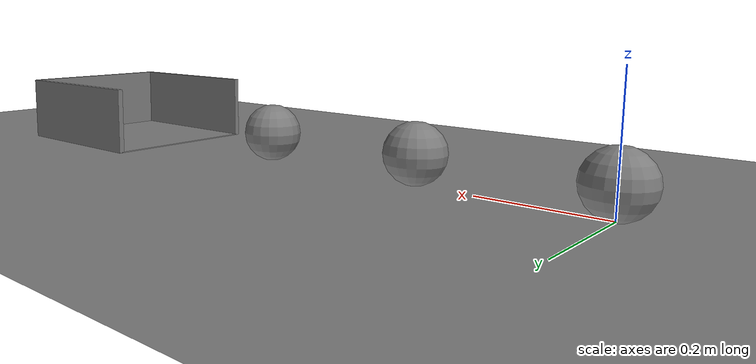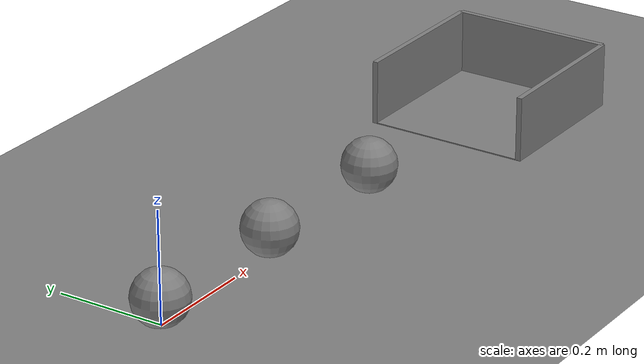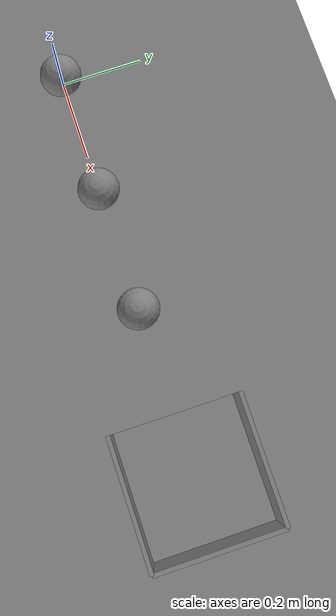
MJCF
<mujoco model="chain_fixture">
  <option timestep="0.002"/>
  <worldbody>
    <geom name="floor" type="plane" size="5 5 0.1" friction="0.8 0.005 0.002"/>
    <body name="ball1" pos="0 0 0.05">
      <freejoint/>
      <geom name="ball1" type="sphere" size="0.05" mass="0.2" condim="6" friction="0.8 0.005 0.0005"/>
    </body>
    <body name="ball2" pos="0.3 0 0.05">
      <freejoint/>
      <geom name="ball2" type="sphere" size="0.05" mass="0.2" condim="6" friction="0.8 0.005 0.0005"/>
    </body>
    <body name="ball3" pos="0.6 0 0.05">
      <freejoint/>
      <geom name="ball3" type="sphere" size="0.05" mass="0.2" condim="6" friction="0.8 0.005 0.0005"/>
    </body>
    <body name="cup" pos="1.0 0 0">
      <geom name="cup_base" type="box" pos="0 0 0.001" size="0.15 0.15 0.001"/>
      <geom name="cup_far" type="box" pos="0.15 0 0.06" size="0.005 0.15 0.06"/>
      <geom name="cup_left" type="box" pos="0 0.15 0.06" size="0.15 0.005 0.06"/>
      <geom name="cup_right" type="box" pos="0 -0.15 0.06" size="0.15 0.005 0.06"/>
    </body>
  </worldbody>
  <keyframe>
    <key name="start" qpos="0 0 0.05 1 0 0 0 0.3 0 0.05 1 0 0 0 0.6 0 0.05 1 0 0 0" qvel="4.0 0 0 0 0 0 0 0 0 0 0 0 0 0 0 0 0 0"/>
  </keyframe>
</mujoco>
